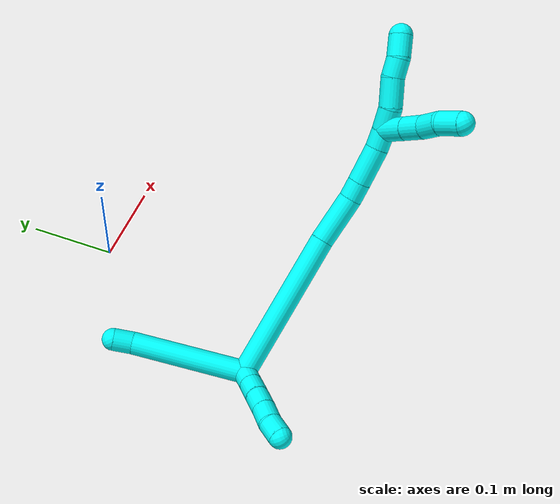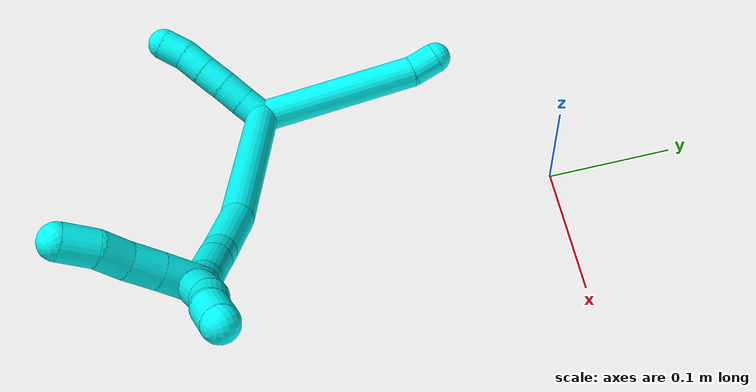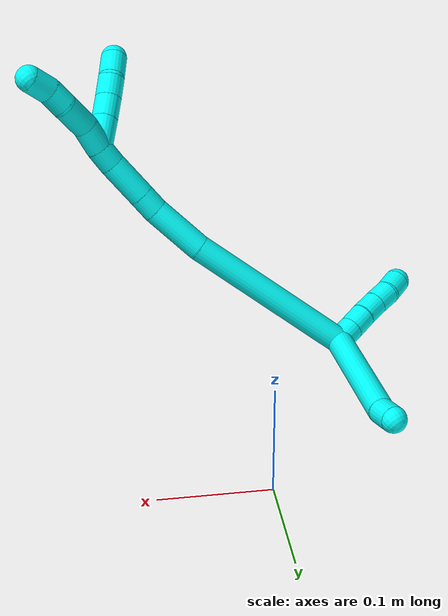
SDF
<sdf version="1.7">
 <world name="default">
  <model name="3">
   <static>0</static>
   <link name="3">
    <collision name="collision-cylinder-e_1_2_8">
     <pose>0.024218 0.030395 -0.050767 -2.60211 0.388497 -1.23687</pose>
     <geometry><cylinder><radius>0.0125</radius><length>0.127869</length></cylinder></geometry>
     <surface>
      <friction><ode><mu>1.16</mu><mu2>1.16</mu2><slip1>0</slip1><slip2>0</slip2></ode></friction>
      <contact><ode><kp>1e+06</kp><kd>1</kd><max_vel>0</max_vel><min_depth>0.001</min_depth></ode></contact>
     </surface>
    </collision>
    <visual name="visual-cylinder-e_1_2_8">
     <pose>0.024218 0.030395 -0.050767 -2.60211 0.388497 -1.23687</pose>
     <geometry><cylinder><radius>0.0125</radius><length>0.127869</length></cylinder></geometry>
     <material><ambient>0.003922 1 0.996078 1</ambient></material>
    </visual>
    <collision name="collision-cylinder-e_2_8_6">
     <pose>0.050529 0.067726 -0.109897 -2.44932 0.190231 -0.517208</pose>
     <geometry><cylinder><radius>0.0125</radius><length>0.022131</length></cylinder></geometry>
     <surface>
      <friction><ode><mu>1.16</mu><mu2>1.16</mu2><slip1>0</slip1><slip2>0</slip2></ode></friction>
      <contact><ode><kp>1e+06</kp><kd>1</kd><max_vel>0</max_vel><min_depth>0.001</min_depth></ode></contact>
     </surface>
    </collision>
    <visual name="visual-cylinder-e_2_8_6">
     <pose>0.050529 0.067726 -0.109897 -2.44932 0.190231 -0.517208</pose>
     <geometry><cylinder><radius>0.0125</radius><length>0.022131</length></cylinder></geometry>
     <material><ambient>0.003922 1 0.996078 1</ambient></material>
    </visual>
    <collision name="collision-cylinder-e_1_2_9">
     <pose>-0.00946 0.000888 0.003117 -0.277497 -1.24074 0.198886</pose>
     <geometry><cylinder><radius>0.0125</radius><length>0.02</length></cylinder></geometry>
     <surface>
      <friction><ode><mu>1.16</mu><mu2>1.16</mu2><slip1>0</slip1><slip2>0</slip2></ode></friction>
      <contact><ode><kp>1e+06</kp><kd>1</kd><max_vel>0</max_vel><min_depth>0.001</min_depth></ode></contact>
     </surface>
    </collision>
    <visual name="visual-cylinder-e_1_2_9">
     <pose>-0.00946 0.000888 0.003117 -0.277497 -1.24074 0.198886</pose>
     <geometry><cylinder><radius>0.0125</radius><length>0.02</length></cylinder></geometry>
     <material><ambient>0.003922 1 0.996078 1</ambient></material>
    </visual>
    <collision name="collision-cylinder-e_2_9_10">
     <pose>-0.028354 0.003028 0.009307 -0.387046 -1.23259 0.275868</pose>
     <geometry><cylinder><radius>0.0125</radius><length>0.02</length></cylinder></geometry>
     <surface>
      <friction><ode><mu>1.16</mu><mu2>1.16</mu2><slip1>0</slip1><slip2>0</slip2></ode></friction>
      <contact><ode><kp>1e+06</kp><kd>1</kd><max_vel>0</max_vel><min_depth>0.001</min_depth></ode></contact>
     </surface>
    </collision>
    <visual name="visual-cylinder-e_2_9_10">
     <pose>-0.028354 0.003028 0.009307 -0.387046 -1.23259 0.275868</pose>
     <geometry><cylinder><radius>0.0125</radius><length>0.02</length></cylinder></geometry>
     <material><ambient>0.003922 1 0.996078 1</ambient></material>
    </visual>
    <collision name="collision-cylinder-e_3_10_11">
     <pose>-0.047356 0.004759 0.015246 -0.165299 -1.27583 0.122663</pose>
     <geometry><cylinder><radius>0.0125</radius><length>0.02</length></cylinder></geometry>
     <surface>
      <friction><ode><mu>1.16</mu><mu2>1.16</mu2><slip1>0</slip1><slip2>0</slip2></ode></friction>
      <contact><ode><kp>1e+06</kp><kd>1</kd><max_vel>0</max_vel><min_depth>0.001</min_depth></ode></contact>
     </surface>
    </collision>
    <visual name="visual-cylinder-e_3_10_11">
     <pose>-0.047356 0.004759 0.015246 -0.165299 -1.27583 0.122663</pose>
     <geometry><cylinder><radius>0.0125</radius><length>0.02</length></cylinder></geometry>
     <material><ambient>0.003922 1 0.996078 1</ambient></material>
    </visual>
    <collision name="collision-cylinder-e_4_11_12">
     <pose>-0.066604 0.005779 0.020562 -0.217826 -1.31737 0.168865</pose>
     <geometry><cylinder><radius>0.0125</radius><length>0.02</length></cylinder></geometry>
     <surface>
      <friction><ode><mu>1.16</mu><mu2>1.16</mu2><slip1>0</slip1><slip2>0</slip2></ode></friction>
      <contact><ode><kp>1e+06</kp><kd>1</kd><max_vel>0</max_vel><min_depth>0.001</min_depth></ode></contact>
     </surface>
    </collision>
    <visual name="visual-cylinder-e_4_11_12">
     <pose>-0.066604 0.005779 0.020562 -0.217826 -1.31737 0.168865</pose>
     <geometry><cylinder><radius>0.0125</radius><length>0.02</length></cylinder></geometry>
     <material><ambient>0.003922 1 0.996078 1</ambient></material>
    </visual>
    <collision name="collision-cylinder-e_5_12_5">
     <pose>-0.085493 0.005357 0.02679 0.249518 -1.17004 -0.165755</pose>
     <geometry><cylinder><radius>0.0125</radius><length>0.02</length></cylinder></geometry>
     <surface>
      <friction><ode><mu>1.16</mu><mu2>1.16</mu2><slip1>0</slip1><slip2>0</slip2></ode></friction>
      <contact><ode><kp>1e+06</kp><kd>1</kd><max_vel>0</max_vel><min_depth>0.001</min_depth></ode></contact>
     </surface>
    </collision>
    <visual name="visual-cylinder-e_5_12_5">
     <pose>-0.085493 0.005357 0.02679 0.249518 -1.17004 -0.165755</pose>
     <geometry><cylinder><radius>0.0125</radius><length>0.02</length></cylinder></geometry>
     <material><ambient>0.003922 1 0.996078 1</ambient></material>
    </visual>
    <collision name="collision-cylinder-e_1_2_13">
     <pose>0.046586 0.020519 0.064924 -0.30612 0.60004 -0.095375</pose>
     <geometry><cylinder><radius>0.0125</radius><length>0.165002</length></cylinder></geometry>
     <surface>
      <friction><ode><mu>1.16</mu><mu2>1.16</mu2><slip1>0</slip1><slip2>0</slip2></ode></friction>
      <contact><ode><kp>1e+06</kp><kd>1</kd><max_vel>0</max_vel><min_depth>0.001</min_depth></ode></contact>
     </surface>
    </collision>
    <visual name="visual-cylinder-e_1_2_13">
     <pose>0.046586 0.020519 0.064924 -0.30612 0.60004 -0.095375</pose>
     <geometry><cylinder><radius>0.0125</radius><length>0.165002</length></cylinder></geometry>
     <material><ambient>0.003922 1 0.996078 1</ambient></material>
    </visual>
    <collision name="collision-cylinder-e_2_13_14">
     <pose>0.105508 0.048759 0.152631 -0.326714 0.473822 -0.079551</pose>
     <geometry><cylinder><radius>0.0125</radius><length>0.054069</length></cylinder></geometry>
     <surface>
      <friction><ode><mu>1.16</mu><mu2>1.16</mu2><slip1>0</slip1><slip2>0</slip2></ode></friction>
      <contact><ode><kp>1e+06</kp><kd>1</kd><max_vel>0</max_vel><min_depth>0.001</min_depth></ode></contact>
     </surface>
    </collision>
    <visual name="visual-cylinder-e_2_13_14">
     <pose>0.105508 0.048759 0.152631 -0.326714 0.473822 -0.079551</pose>
     <geometry><cylinder><radius>0.0125</radius><length>0.054069</length></cylinder></geometry>
     <material><ambient>0.003922 1 0.996078 1</ambient></material>
    </visual>
    <collision name="collision-cylinder-e_3_14_15">
     <pose>0.122002 0.060919 0.183486 -0.502821 0.424016 -0.110455</pose>
     <geometry><cylinder><radius>0.0125</radius><length>0.020213</length></cylinder></geometry>
     <surface>
      <friction><ode><mu>1.16</mu><mu2>1.16</mu2><slip1>0</slip1><slip2>0</slip2></ode></friction>
      <contact><ode><kp>1e+06</kp><kd>1</kd><max_vel>0</max_vel><min_depth>0.001</min_depth></ode></contact>
     </surface>
    </collision>
    <visual name="visual-cylinder-e_3_14_15">
     <pose>0.122002 0.060919 0.183486 -0.502821 0.424016 -0.110455</pose>
     <geometry><cylinder><radius>0.0125</radius><length>0.020213</length></cylinder></geometry>
     <material><ambient>0.003922 1 0.996078 1</ambient></material>
    </visual>
    <collision name="collision-cylinder-e_4_15_16">
     <pose>0.134706 0.074406 0.207546 -0.514973 0.43543 -0.116378</pose>
     <geometry><cylinder><radius>0.0125</radius><length>0.040524</length></cylinder></geometry>
     <surface>
      <friction><ode><mu>1.16</mu><mu2>1.16</mu2><slip1>0</slip1><slip2>0</slip2></ode></friction>
      <contact><ode><kp>1e+06</kp><kd>1</kd><max_vel>0</max_vel><min_depth>0.001</min_depth></ode></contact>
     </surface>
    </collision>
    <visual name="visual-cylinder-e_4_15_16">
     <pose>0.134706 0.074406 0.207546 -0.514973 0.43543 -0.116378</pose>
     <geometry><cylinder><radius>0.0125</radius><length>0.040524</length></cylinder></geometry>
     <material><ambient>0.003922 1 0.996078 1</ambient></material>
    </visual>
    <collision name="collision-cylinder-e_5_16_1">
     <pose>0.147454 0.089163 0.230724 -0.671156 0.429219 -0.151748</pose>
     <geometry><cylinder><radius>0.0125</radius><length>0.020192</length></cylinder></geometry>
     <surface>
      <friction><ode><mu>1.16</mu><mu2>1.16</mu2><slip1>0</slip1><slip2>0</slip2></ode></friction>
      <contact><ode><kp>1e+06</kp><kd>1</kd><max_vel>0</max_vel><min_depth>0.001</min_depth></ode></contact>
     </surface>
    </collision>
    <visual name="visual-cylinder-e_5_16_1">
     <pose>0.147454 0.089163 0.230724 -0.671156 0.429219 -0.151748</pose>
     <geometry><cylinder><radius>0.0125</radius><length>0.020192</length></cylinder></geometry>
     <material><ambient>0.003922 1 0.996078 1</ambient></material>
    </visual>
    <collision name="collision-cylinder-e_1_1_17">
     <pose>0.155883 0.103123 0.246209 -0.782641 0.346638 -0.144222</pose>
     <geometry><cylinder><radius>0.0125</radius><length>0.024881</length></cylinder></geometry>
     <surface>
      <friction><ode><mu>1.16</mu><mu2>1.16</mu2><slip1>0</slip1><slip2>0</slip2></ode></friction>
      <contact><ode><kp>1e+06</kp><kd>1</kd><max_vel>0</max_vel><min_depth>0.001</min_depth></ode></contact>
     </surface>
    </collision>
    <visual name="visual-cylinder-e_1_1_17">
     <pose>0.155883 0.103123 0.246209 -0.782641 0.346638 -0.144222</pose>
     <geometry><cylinder><radius>0.0125</radius><length>0.024881</length></cylinder></geometry>
     <material><ambient>0.003922 1 0.996078 1</ambient></material>
    </visual>
    <collision name="collision-cylinder-e_2_17_18">
     <pose>0.169109 0.121757 0.262083 -0.940354 0.610836 -0.317746</pose>
     <geometry><cylinder><radius>0.0125</radius><length>0.031384</length></cylinder></geometry>
     <surface>
      <friction><ode><mu>1.16</mu><mu2>1.16</mu2><slip1>0</slip1><slip2>0</slip2></ode></friction>
      <contact><ode><kp>1e+06</kp><kd>1</kd><max_vel>0</max_vel><min_depth>0.001</min_depth></ode></contact>
     </surface>
    </collision>
    <visual name="visual-cylinder-e_2_17_18">
     <pose>0.169109 0.121757 0.262083 -0.940354 0.610836 -0.317746</pose>
     <geometry><cylinder><radius>0.0125</radius><length>0.031384</length></cylinder></geometry>
     <material><ambient>0.003922 1 0.996078 1</ambient></material>
    </visual>
    <collision name="collision-cylinder-e_3_18_19">
     <pose>0.183304 0.137659 0.276284 -0.694716 0.542256 -0.200598</pose>
     <geometry><cylinder><radius>0.0125</radius><length>0.020131</length></cylinder></geometry>
     <surface>
      <friction><ode><mu>1.16</mu><mu2>1.16</mu2><slip1>0</slip1><slip2>0</slip2></ode></friction>
      <contact><ode><kp>1e+06</kp><kd>1</kd><max_vel>0</max_vel><min_depth>0.001</min_depth></ode></contact>
     </surface>
    </collision>
    <visual name="visual-cylinder-e_3_18_19">
     <pose>0.183304 0.137659 0.276284 -0.694716 0.542256 -0.200598</pose>
     <geometry><cylinder><radius>0.0125</radius><length>0.020131</length></cylinder></geometry>
     <material><ambient>0.003922 1 0.996078 1</ambient></material>
    </visual>
    <collision name="collision-cylinder-e_4_19_4">
     <pose>0.196975 0.14909 0.288608 -0.803598 0.801203 -0.356094</pose>
     <geometry><cylinder><radius>0.0125</radius><length>0.023604</length></cylinder></geometry>
     <surface>
      <friction><ode><mu>1.16</mu><mu2>1.16</mu2><slip1>0</slip1><slip2>0</slip2></ode></friction>
      <contact><ode><kp>1e+06</kp><kd>1</kd><max_vel>0</max_vel><min_depth>0.001</min_depth></ode></contact>
     </surface>
    </collision>
    <visual name="visual-cylinder-e_4_19_4">
     <pose>0.196975 0.14909 0.288608 -0.803598 0.801203 -0.356094</pose>
     <geometry><cylinder><radius>0.0125</radius><length>0.023604</length></cylinder></geometry>
     <material><ambient>0.003922 1 0.996078 1</ambient></material>
    </visual>
    <collision name="collision-cylinder-e_1_1_20">
     <pose>0.142248 0.098033 0.249433 -0.267818 -0.667114 0.093291</pose>
     <geometry><cylinder><radius>0.0125</radius><length>0.030412</length></cylinder></geometry>
     <surface>
      <friction><ode><mu>1.16</mu><mu2>1.16</mu2><slip1>0</slip1><slip2>0</slip2></ode></friction>
      <contact><ode><kp>1e+06</kp><kd>1</kd><max_vel>0</max_vel><min_depth>0.001</min_depth></ode></contact>
     </surface>
    </collision>
    <visual name="visual-cylinder-e_1_1_20">
     <pose>0.142248 0.098033 0.249433 -0.267818 -0.667114 0.093291</pose>
     <geometry><cylinder><radius>0.0125</radius><length>0.030412</length></cylinder></geometry>
     <material><ambient>0.003922 1 0.996078 1</ambient></material>
    </visual>
    <collision name="collision-cylinder-e_2_20_21">
     <pose>0.125774 0.103566 0.269979 -0.256922 -0.648043 0.086713</pose>
     <geometry><cylinder><radius>0.0125</radius><length>0.023412</length></cylinder></geometry>
     <surface>
      <friction><ode><mu>1.16</mu><mu2>1.16</mu2><slip1>0</slip1><slip2>0</slip2></ode></friction>
      <contact><ode><kp>1e+06</kp><kd>1</kd><max_vel>0</max_vel><min_depth>0.001</min_depth></ode></contact>
     </surface>
    </collision>
    <visual name="visual-cylinder-e_2_20_21">
     <pose>0.125774 0.103566 0.269979 -0.256922 -0.648043 0.086713</pose>
     <geometry><cylinder><radius>0.0125</radius><length>0.023412</length></cylinder></geometry>
     <material><ambient>0.003922 1 0.996078 1</ambient></material>
    </visual>
    <collision name="collision-cylinder-e_3_21_22">
     <pose>0.112666 0.109412 0.287178 -0.402 -0.597376 0.125306</pose>
     <geometry><cylinder><radius>0.0125</radius><length>0.021482</length></cylinder></geometry>
     <surface>
      <friction><ode><mu>1.16</mu><mu2>1.16</mu2><slip1>0</slip1><slip2>0</slip2></ode></friction>
      <contact><ode><kp>1e+06</kp><kd>1</kd><max_vel>0</max_vel><min_depth>0.001</min_depth></ode></contact>
     </surface>
    </collision>
    <visual name="visual-cylinder-e_3_21_22">
     <pose>0.112666 0.109412 0.287178 -0.402 -0.597376 0.125306</pose>
     <geometry><cylinder><radius>0.0125</radius><length>0.021482</length></cylinder></geometry>
     <material><ambient>0.003922 1 0.996078 1</ambient></material>
    </visual>
    <collision name="collision-cylinder-e_4_22_3">
     <pose>0.099226 0.113411 0.305222 -0.053021 -0.642573 0.01765</pose>
     <geometry><cylinder><radius>0.0125</radius><length>0.024695</length></cylinder></geometry>
     <surface>
      <friction><ode><mu>1.16</mu><mu2>1.16</mu2><slip1>0</slip1><slip2>0</slip2></ode></friction>
      <contact><ode><kp>1e+06</kp><kd>1</kd><max_vel>0</max_vel><min_depth>0.001</min_depth></ode></contact>
     </surface>
    </collision>
    <visual name="visual-cylinder-e_4_22_3">
     <pose>0.099226 0.113411 0.305222 -0.053021 -0.642573 0.01765</pose>
     <geometry><cylinder><radius>0.0125</radius><length>0.024695</length></cylinder></geometry>
     <material><ambient>0.003922 1 0.996078 1</ambient></material>
    </visual>
    <collision name="collision-sphere-3">
     <pose>0.091826 0.113934 0.315093 0 -0 0</pose>
     <geometry><sphere><radius>0.0125</radius></sphere></geometry>
     <surface>
      <friction><ode><mu>1.16</mu><mu2>1.16</mu2><slip1>0</slip1><slip2>0</slip2></ode></friction>
      <contact><ode><kp>1e+06</kp><kd>1</kd><max_vel>0</max_vel><min_depth>0.001</min_depth></ode></contact>
     </surface>
    </collision>
    <visual name="visual-sphere-3">
     <pose>0.091826 0.113934 0.315093 0 -0 0</pose>
     <geometry><sphere><radius>0.0125</radius></sphere></geometry>
     <material><ambient>0.003922 1 0.996078 1</ambient></material>
    </visual>
    <collision name="collision-sphere-22">
     <pose>0.106625 0.112887 0.295351 0 -0 0</pose>
     <geometry><sphere><radius>0.0125</radius></sphere></geometry>
     <surface>
      <friction><ode><mu>1.16</mu><mu2>1.16</mu2><slip1>0</slip1><slip2>0</slip2></ode></friction>
      <contact><ode><kp>1e+06</kp><kd>1</kd><max_vel>0</max_vel><min_depth>0.001</min_depth></ode></contact>
     </surface>
    </collision>
    <visual name="visual-sphere-22">
     <pose>0.106625 0.112887 0.295351 0 -0 0</pose>
     <geometry><sphere><radius>0.0125</radius></sphere></geometry>
     <material><ambient>0.003922 1 0.996078 1</ambient></material>
    </visual>
    <collision name="collision-sphere-21">
     <pose>0.118708 0.105937 0.279005 0 -0 0</pose>
     <geometry><sphere><radius>0.0125</radius></sphere></geometry>
     <surface>
      <friction><ode><mu>1.16</mu><mu2>1.16</mu2><slip1>0</slip1><slip2>0</slip2></ode></friction>
      <contact><ode><kp>1e+06</kp><kd>1</kd><max_vel>0</max_vel><min_depth>0.001</min_depth></ode></contact>
     </surface>
    </collision>
    <visual name="visual-sphere-21">
     <pose>0.118708 0.105937 0.279005 0 -0 0</pose>
     <geometry><sphere><radius>0.0125</radius></sphere></geometry>
     <material><ambient>0.003922 1 0.996078 1</ambient></material>
    </visual>
    <collision name="collision-sphere-20">
     <pose>0.13284 0.101194 0.260953 0 -0 0</pose>
     <geometry><sphere><radius>0.0125</radius></sphere></geometry>
     <surface>
      <friction><ode><mu>1.16</mu><mu2>1.16</mu2><slip1>0</slip1><slip2>0</slip2></ode></friction>
      <contact><ode><kp>1e+06</kp><kd>1</kd><max_vel>0</max_vel><min_depth>0.001</min_depth></ode></contact>
     </surface>
    </collision>
    <visual name="visual-sphere-20">
     <pose>0.13284 0.101194 0.260953 0 -0 0</pose>
     <geometry><sphere><radius>0.0125</radius></sphere></geometry>
     <material><ambient>0.003922 1 0.996078 1</ambient></material>
    </visual>
    <collision name="collision-sphere-4">
     <pose>0.205451 0.155002 0.294308 0 -0 0</pose>
     <geometry><sphere><radius>0.0125</radius></sphere></geometry>
     <surface>
      <friction><ode><mu>1.16</mu><mu2>1.16</mu2><slip1>0</slip1><slip2>0</slip2></ode></friction>
      <contact><ode><kp>1e+06</kp><kd>1</kd><max_vel>0</max_vel><min_depth>0.001</min_depth></ode></contact>
     </surface>
    </collision>
    <visual name="visual-sphere-4">
     <pose>0.205451 0.155002 0.294308 0 -0 0</pose>
     <geometry><sphere><radius>0.0125</radius></sphere></geometry>
     <material><ambient>0.003922 1 0.996078 1</ambient></material>
    </visual>
    <collision name="collision-sphere-11">
     <pose>-0.056924 0.005237 0.018114 0 -0 0</pose>
     <geometry><sphere><radius>0.0125</radius></sphere></geometry>
     <surface>
      <friction><ode><mu>1.16</mu><mu2>1.16</mu2><slip1>0</slip1><slip2>0</slip2></ode></friction>
      <contact><ode><kp>1e+06</kp><kd>1</kd><max_vel>0</max_vel><min_depth>0.001</min_depth></ode></contact>
     </surface>
    </collision>
    <visual name="visual-sphere-11">
     <pose>-0.056924 0.005237 0.018114 0 -0 0</pose>
     <geometry><sphere><radius>0.0125</radius></sphere></geometry>
     <material><ambient>0.003922 1 0.996078 1</ambient></material>
    </visual>
    <collision name="collision-sphere-10">
     <pose>-0.037787 0.00428 0.012379 0 -0 0</pose>
     <geometry><sphere><radius>0.0125</radius></sphere></geometry>
     <surface>
      <friction><ode><mu>1.16</mu><mu2>1.16</mu2><slip1>0</slip1><slip2>0</slip2></ode></friction>
      <contact><ode><kp>1e+06</kp><kd>1</kd><max_vel>0</max_vel><min_depth>0.001</min_depth></ode></contact>
     </surface>
    </collision>
    <visual name="visual-sphere-10">
     <pose>-0.037787 0.00428 0.012379 0 -0 0</pose>
     <geometry><sphere><radius>0.0125</radius></sphere></geometry>
     <material><ambient>0.003922 1 0.996078 1</ambient></material>
    </visual>
    <collision name="collision-sphere-6">
     <pose>0.052621 0.074662 -0.118262 0 -0 0</pose>
     <geometry><sphere><radius>0.0125</radius></sphere></geometry>
     <surface>
      <friction><ode><mu>1.16</mu><mu2>1.16</mu2><slip1>0</slip1><slip2>0</slip2></ode></friction>
      <contact><ode><kp>1e+06</kp><kd>1</kd><max_vel>0</max_vel><min_depth>0.001</min_depth></ode></contact>
     </surface>
    </collision>
    <visual name="visual-sphere-6">
     <pose>0.052621 0.074662 -0.118262 0 -0 0</pose>
     <geometry><sphere><radius>0.0125</radius></sphere></geometry>
     <material><ambient>0.003922 1 0.996078 1</ambient></material>
    </visual>
    <collision name="collision-sphere-9">
     <pose>-0.01892 0.001776 0.006234 0 -0 0</pose>
     <geometry><sphere><radius>0.0125</radius></sphere></geometry>
     <surface>
      <friction><ode><mu>1.16</mu><mu2>1.16</mu2><slip1>0</slip1><slip2>0</slip2></ode></friction>
      <contact><ode><kp>1e+06</kp><kd>1</kd><max_vel>0</max_vel><min_depth>0.001</min_depth></ode></contact>
     </surface>
    </collision>
    <visual name="visual-sphere-9">
     <pose>-0.01892 0.001776 0.006234 0 -0 0</pose>
     <geometry><sphere><radius>0.0125</radius></sphere></geometry>
     <material><ambient>0.003922 1 0.996078 1</ambient></material>
    </visual>
    <collision name="collision-sphere-2">
     <geometry><sphere><radius>0.0125</radius></sphere></geometry>
     <surface>
      <friction><ode><mu>1.16</mu><mu2>1.16</mu2><slip1>0</slip1><slip2>0</slip2></ode></friction>
      <contact><ode><kp>1e+06</kp><kd>1</kd><max_vel>0</max_vel><min_depth>0.001</min_depth></ode></contact>
     </surface>
    </collision>
    <visual name="visual-sphere-2">
     <geometry><sphere><radius>0.0125</radius></sphere></geometry>
     <material><ambient>0.003922 1 0.996078 1</ambient></material>
    </visual>
    <collision name="collision-sphere-19">
     <pose>0.188499 0.143179 0.282907 0 -0 0</pose>
     <geometry><sphere><radius>0.0125</radius></sphere></geometry>
     <surface>
      <friction><ode><mu>1.16</mu><mu2>1.16</mu2><slip1>0</slip1><slip2>0</slip2></ode></friction>
      <contact><ode><kp>1e+06</kp><kd>1</kd><max_vel>0</max_vel><min_depth>0.001</min_depth></ode></contact>
     </surface>
    </collision>
    <visual name="visual-sphere-19">
     <pose>0.188499 0.143179 0.282907 0 -0 0</pose>
     <geometry><sphere><radius>0.0125</radius></sphere></geometry>
     <material><ambient>0.003922 1 0.996078 1</ambient></material>
    </visual>
    <collision name="collision-sphere-8">
     <pose>0.048437 0.060791 -0.101533 0 -0 0</pose>
     <geometry><sphere><radius>0.0125</radius></sphere></geometry>
     <surface>
      <friction><ode><mu>1.16</mu><mu2>1.16</mu2><slip1>0</slip1><slip2>0</slip2></ode></friction>
      <contact><ode><kp>1e+06</kp><kd>1</kd><max_vel>0</max_vel><min_depth>0.001</min_depth></ode></contact>
     </surface>
    </collision>
    <visual name="visual-sphere-8">
     <pose>0.048437 0.060791 -0.101533 0 -0 0</pose>
     <geometry><sphere><radius>0.0125</radius></sphere></geometry>
     <material><ambient>0.003922 1 0.996078 1</ambient></material>
    </visual>
    <collision name="collision-sphere-12">
     <pose>-0.076285 0.006321 0.02301 0 -0 0</pose>
     <geometry><sphere><radius>0.0125</radius></sphere></geometry>
     <surface>
      <friction><ode><mu>1.16</mu><mu2>1.16</mu2><slip1>0</slip1><slip2>0</slip2></ode></friction>
      <contact><ode><kp>1e+06</kp><kd>1</kd><max_vel>0</max_vel><min_depth>0.001</min_depth></ode></contact>
     </surface>
    </collision>
    <visual name="visual-sphere-12">
     <pose>-0.076285 0.006321 0.02301 0 -0 0</pose>
     <geometry><sphere><radius>0.0125</radius></sphere></geometry>
     <material><ambient>0.003922 1 0.996078 1</ambient></material>
    </visual>
    <collision name="collision-sphere-5">
     <pose>-0.0947 0.004394 0.03057 0 -0 0</pose>
     <geometry><sphere><radius>0.0125</radius></sphere></geometry>
     <surface>
      <friction><ode><mu>1.16</mu><mu2>1.16</mu2><slip1>0</slip1><slip2>0</slip2></ode></friction>
      <contact><ode><kp>1e+06</kp><kd>1</kd><max_vel>0</max_vel><min_depth>0.001</min_depth></ode></contact>
     </surface>
    </collision>
    <visual name="visual-sphere-5">
     <pose>-0.0947 0.004394 0.03057 0 -0 0</pose>
     <geometry><sphere><radius>0.0125</radius></sphere></geometry>
     <material><ambient>0.003922 1 0.996078 1</ambient></material>
    </visual>
    <collision name="collision-sphere-13">
     <pose>0.093173 0.041039 0.129847 0 -0 0</pose>
     <geometry><sphere><radius>0.0125</radius></sphere></geometry>
     <surface>
      <friction><ode><mu>1.16</mu><mu2>1.16</mu2><slip1>0</slip1><slip2>0</slip2></ode></friction>
      <contact><ode><kp>1e+06</kp><kd>1</kd><max_vel>0</max_vel><min_depth>0.001</min_depth></ode></contact>
     </surface>
    </collision>
    <visual name="visual-sphere-13">
     <pose>0.093173 0.041039 0.129847 0 -0 0</pose>
     <geometry><sphere><radius>0.0125</radius></sphere></geometry>
     <material><ambient>0.003922 1 0.996078 1</ambient></material>
    </visual>
    <collision name="collision-sphere-14">
     <pose>0.117844 0.05648 0.175415 0 -0 0</pose>
     <geometry><sphere><radius>0.0125</radius></sphere></geometry>
     <surface>
      <friction><ode><mu>1.16</mu><mu2>1.16</mu2><slip1>0</slip1><slip2>0</slip2></ode></friction>
      <contact><ode><kp>1e+06</kp><kd>1</kd><max_vel>0</max_vel><min_depth>0.001</min_depth></ode></contact>
     </surface>
    </collision>
    <visual name="visual-sphere-14">
     <pose>0.117844 0.05648 0.175415 0 -0 0</pose>
     <geometry><sphere><radius>0.0125</radius></sphere></geometry>
     <material><ambient>0.003922 1 0.996078 1</ambient></material>
    </visual>
    <collision name="collision-sphere-15">
     <pose>0.12616 0.065358 0.191557 0 -0 0</pose>
     <geometry><sphere><radius>0.0125</radius></sphere></geometry>
     <surface>
      <friction><ode><mu>1.16</mu><mu2>1.16</mu2><slip1>0</slip1><slip2>0</slip2></ode></friction>
      <contact><ode><kp>1e+06</kp><kd>1</kd><max_vel>0</max_vel><min_depth>0.001</min_depth></ode></contact>
     </surface>
    </collision>
    <visual name="visual-sphere-15">
     <pose>0.12616 0.065358 0.191557 0 -0 0</pose>
     <geometry><sphere><radius>0.0125</radius></sphere></geometry>
     <material><ambient>0.003922 1 0.996078 1</ambient></material>
    </visual>
    <collision name="collision-sphere-16">
     <pose>0.143253 0.083454 0.223534 0 -0 0</pose>
     <geometry><sphere><radius>0.0125</radius></sphere></geometry>
     <surface>
      <friction><ode><mu>1.16</mu><mu2>1.16</mu2><slip1>0</slip1><slip2>0</slip2></ode></friction>
      <contact><ode><kp>1e+06</kp><kd>1</kd><max_vel>0</max_vel><min_depth>0.001</min_depth></ode></contact>
     </surface>
    </collision>
    <visual name="visual-sphere-16">
     <pose>0.143253 0.083454 0.223534 0 -0 0</pose>
     <geometry><sphere><radius>0.0125</radius></sphere></geometry>
     <material><ambient>0.003922 1 0.996078 1</ambient></material>
    </visual>
    <collision name="collision-sphere-1">
     <pose>0.151656 0.094872 0.237913 0 -0 0</pose>
     <geometry><sphere><radius>0.0125</radius></sphere></geometry>
     <surface>
      <friction><ode><mu>1.16</mu><mu2>1.16</mu2><slip1>0</slip1><slip2>0</slip2></ode></friction>
      <contact><ode><kp>1e+06</kp><kd>1</kd><max_vel>0</max_vel><min_depth>0.001</min_depth></ode></contact>
     </surface>
    </collision>
    <visual name="visual-sphere-1">
     <pose>0.151656 0.094872 0.237913 0 -0 0</pose>
     <geometry><sphere><radius>0.0125</radius></sphere></geometry>
     <material><ambient>0.003922 1 0.996078 1</ambient></material>
    </visual>
    <collision name="collision-sphere-18">
     <pose>0.17811 0.13214 0.269661 0 -0 0</pose>
     <geometry><sphere><radius>0.0125</radius></sphere></geometry>
     <surface>
      <friction><ode><mu>1.16</mu><mu2>1.16</mu2><slip1>0</slip1><slip2>0</slip2></ode></friction>
      <contact><ode><kp>1e+06</kp><kd>1</kd><max_vel>0</max_vel><min_depth>0.001</min_depth></ode></contact>
     </surface>
    </collision>
    <visual name="visual-sphere-18">
     <pose>0.17811 0.13214 0.269661 0 -0 0</pose>
     <geometry><sphere><radius>0.0125</radius></sphere></geometry>
     <material><ambient>0.003922 1 0.996078 1</ambient></material>
    </visual>
    <collision name="collision-sphere-17">
     <pose>0.160109 0.111373 0.254505 0 -0 0</pose>
     <geometry><sphere><radius>0.0125</radius></sphere></geometry>
     <surface>
      <friction><ode><mu>1.16</mu><mu2>1.16</mu2><slip1>0</slip1><slip2>0</slip2></ode></friction>
      <contact><ode><kp>1e+06</kp><kd>1</kd><max_vel>0</max_vel><min_depth>0.001</min_depth></ode></contact>
     </surface>
    </collision>
    <visual name="visual-sphere-17">
     <pose>0.160109 0.111373 0.254505 0 -0 0</pose>
     <geometry><sphere><radius>0.0125</radius></sphere></geometry>
     <material><ambient>0.003922 1 0.996078 1</ambient></material>
    </visual>
    <inertial>
     <pose>0.07124 0.05478 0.110211 0 -0 0</pose>
     <mass>0.75</mass>
     <inertia>
      <ixx>0.000226</ixx>
      <ixy>0</ixy>
      <ixz>0</ixz>
      <iyy>0.000225</iyy>
      <iyz>0</iyz>
      <izz>-0.000463</izz>
     </inertia>
    </inertial>
   </link>
   <pose>-0.102703 -0.21261 0.011898 1.06709 0.060316 0.479966</pose>
  </model>
 </world>
</sdf>
